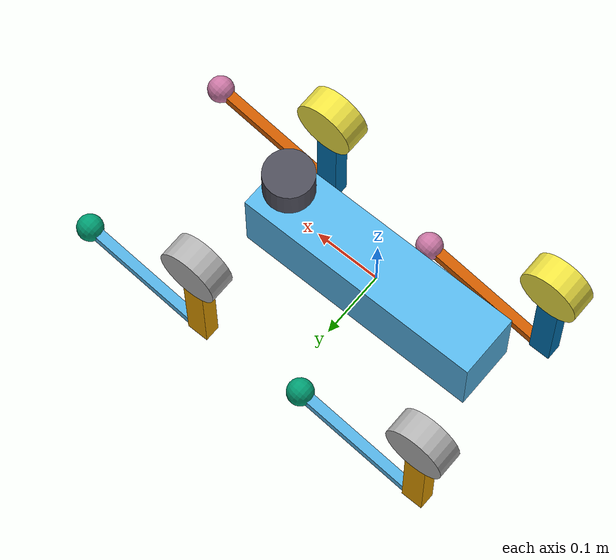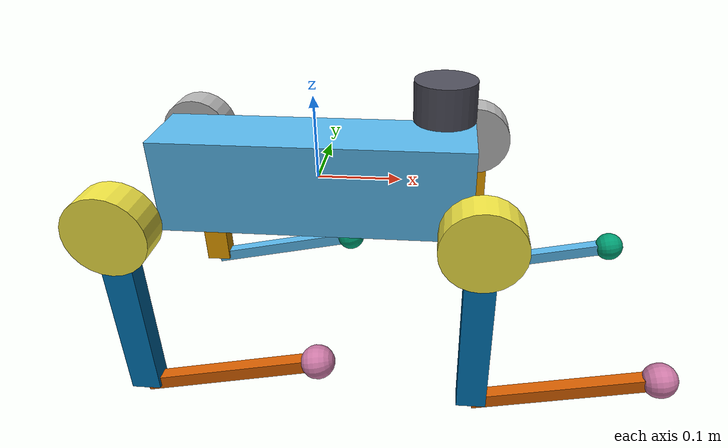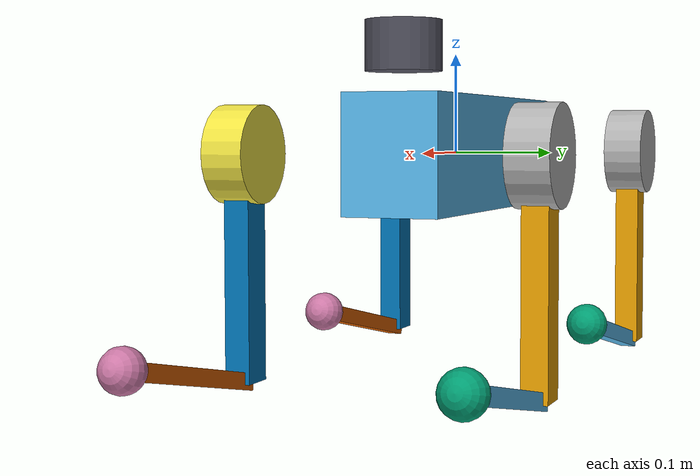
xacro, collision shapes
<?xml version="1.0"?>
<robot name="go2_with_mid360" xmlns:xacro="http://www.ros.org/wiki/xacro">

    <!-- Include go2 robot description -->
    <xacro:include filename="$(find go2_description)/xacro/const.xacro"/>
    <xacro:include filename="$(find go2_description)/xacro/materials.xacro"/>
    <xacro:include filename="$(find go2_description)/xacro/leg.xacro"/>
    <xacro:include filename="$(find go2_description)/xacro/gazebo.xacro"/>

    <!-- Base link -->
    <link name="base_link">
        <visual>
            <origin rpy="0 0 0" xyz="0 0 0"/>
            <geometry>
                <box size="0.001 0.001 0.001"/>
            </geometry>
        </visual>
    </link>

    <joint name="floating_base" type="fixed">
        <origin rpy="0 0 0" xyz="0 0 0"/>
        <parent link="base_link"/>
        <child link="trunk"/>
    </joint>

    <!-- Trunk link -->
    <link name="trunk">
        <visual>
            <origin rpy="0 0 0" xyz="0 0 0"/>
            <geometry>
                <mesh filename="file://$(find go2_description)/meshes/trunk.dae" scale="1 1 1"/>
            </geometry>
        </visual>
        <collision>
            <origin rpy="0 0 0" xyz="0 0 0"/>
            <geometry>
                <box size="${trunk_length} ${trunk_width} ${trunk_height}"/>
            </geometry>
        </collision>
        <inertial>
            <origin rpy="0 0 0" xyz="${trunk_com_x} ${trunk_com_y} ${trunk_com_z}"/>
            <mass value="${trunk_mass}"/>
            <inertia
                ixx="${trunk_ixx}" ixy="${trunk_ixy}" ixz="${trunk_ixz}"
                iyy="${trunk_iyy}" iyz="${trunk_iyz}"
                izz="${trunk_izz}"/>
        </inertial>
    </link>

    <!-- IMU link -->
    <joint name="imu_joint" type="fixed">
        <parent link="trunk"/>
        <child link="imu_link"/>
        <origin rpy="0 0 0" xyz="0 0 0"/>
    </joint>

    <link name="imu_link">
        <inertial>
            <mass value="0.001"/>
            <origin rpy="0 0 0" xyz="0 0 0"/>
            <inertia ixx="0.0001" ixy="0" ixz="0" iyy="0.0001" iyz="0" izz="0.0001"/>
        </inertial>
        <visual>
            <origin rpy="0 0 0" xyz="0 0 0"/>
            <geometry>
                <box size="0.001 0.001 0.001"/>
            </geometry>
        </visual>
        <collision>
            <origin rpy="0 0 0" xyz="0 0 0"/>
            <geometry>
                <box size=".001 .001 .001"/>
            </geometry>
        </collision>
    </link>

    <!-- Legs -->
    <xacro:leg name="rf" mirror="-1" mirror_dae="False" front_hind="1"  front_hind_dae="True"  />
    <xacro:leg name="lf" mirror="1"  mirror_dae="True"  front_hind="1"  front_hind_dae="True"  />
    <xacro:leg name="rh" mirror="-1" mirror_dae="False" front_hind="-1" front_hind_dae="False" />
    <xacro:leg name="lh" mirror="1"  mirror_dae="True"  front_hind="-1" front_hind_dae="False" />

    <!-- Livox Mid360 Lidar -->
    <joint name="livox_mid360_joint" type="fixed">
        <parent link="trunk"/>
        <child link="livox_mid360_link"/>
        <!-- Mount on top of the robot, centered -->
        <origin rpy="0 0 0" xyz="0.15 0.0 0.1"/>
    </joint>

    <link name="livox_mid360_link">
        <inertial>
            <mass value="0.265"/>
            <origin rpy="0 0 0" xyz="0 0 0"/>
            <inertia ixx="0.0001" ixy="0" ixz="0" iyy="0.0001" iyz="0" izz="0.0001"/>
        </inertial>
        <collision>
            <origin rpy="0 0 0" xyz="0 0 0"/>
            <geometry>
                <cylinder radius="0.036" length="0.047"/>
            </geometry>
        </collision>
        <visual>
            <origin rpy="0 0 0" xyz="0 0 0"/>
            <geometry>
                <cylinder radius="0.036" length="0.047"/>
            </geometry>
            <material name="livox_grey">
                <color rgba="0.3 0.3 0.35 1.0"/>
            </material>
        </visual>
        <!-- Top disc -->
        <visual>
            <origin rpy="0 0 0" xyz="0 0 0.022"/>
            <geometry>
                <cylinder radius="0.036" length="0.003"/>
            </geometry>
            <material name="livox_dark">
                <color rgba="0.15 0.15 0.15 1.0"/>
            </material>
        </visual>
    </link>

    <gazebo reference="livox_mid360_link">
        <sensor type="ray" name="laser_livox">
            <pose>0 0 0.02 0 0 0</pose>
            <visualize>true</visualize>
            <always_on>true</always_on>
            <update_rate>10</update_rate>
            <ray>
                <scan>
                    <horizontal>
                        <samples>100</samples>
                        <resolution>1</resolution>
                        <min_angle>-3.1415926535897931</min_angle>
                        <max_angle>3.1415926535897931</max_angle>
                    </horizontal>
                    <vertical>
                        <samples>50</samples>
                        <resolution>1</resolution>
                        <min_angle>-3.1415926535897931</min_angle>
                        <max_angle>3.1415926535897931</max_angle>
                    </vertical>
                </scan>
                <range>
                    <min>0.1</min>
                    <max>40</max>
                    <resolution>1</resolution>
                </range>
                <noise>
                    <type>gaussian</type>
                    <mean>0.0</mean>
                    <stddev>0.0</stddev>
                </noise>
            </ray>
            <plugin name="gazebo_ros_laser_controller" filename="liblivox_laser_simulation_plugin.so">
                <ray>
                    <scan>
                        <horizontal>
                            <samples>100</samples>
                            <resolution>1</resolution>
                            <min_angle>-3.1415926535897931</min_angle>
                            <max_angle>3.1415926535897931</max_angle>
                        </horizontal>
                        <vertical>
                            <samples>50</samples>
                            <resolution>1</resolution>
                            <min_angle>-3.1415926535897931</min_angle>
                            <max_angle>3.1415926535897931</max_angle>
                        </vertical>
                    </scan>
                    <range>
                        <min>0.1</min>
                        <max>40</max>
                        <resolution>1</resolution>
                    </range>
                    <noise>
                        <type>gaussian</type>
                        <mean>0.0</mean>
                        <stddev>0.0</stddev>
                    </noise>
                </ray>
                <visualize>true</visualize>
                <samples>24000</samples>
                <downsample>1</downsample>
                <csv_file_name>mid360-real-centr.csv</csv_file_name>
                <publish_pointcloud_type>2</publish_pointcloud_type>
                <ros_topic>/livox/lidar</ros_topic>
                <frameName>livox_mid360_link</frameName>
            </plugin>
        </sensor>
    </gazebo>

</robot>

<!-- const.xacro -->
<robot xmlns:xacro="http://www.ros.org/wiki/xacro">

    <!-- Constants for robot dimensions -->
    <xacro:property name="PI" value="3.1415926535897931"/>
    <xacro:property name="stick_mass" value="0.00001"/>

    <!-- simplified collision value -->
    <xacro:property name="trunk_width" value="0.0935"/>
    <xacro:property name="trunk_length" value="0.3762"/>
    <xacro:property name="trunk_height" value="0.114"/>
    <xacro:property name="hip_radius" value="0.046"/>
    <xacro:property name="hip_length" value="0.04"/>
    <xacro:property name="thigh_shoulder_radius" value="0.041"/>
    <xacro:property name="thigh_shoulder_length" value="0.032"/>
    <xacro:property name="thigh_width" value="0.0245"/>
    <xacro:property name="thigh_height" value="0.034"/>
    <xacro:property name="calf_width" value="0.016"/>
    <xacro:property name="calf_height" value="0.016"/>
    <xacro:property name="foot_radius" value="0.02"/>
    <xacro:property name="stick_radius" value="0.01"/>
    <xacro:property name="stick_length" value="0.2"/>

    <!-- kinematic value -->
    <xacro:property name="thigh_offset" value="0.0955"/>
    <xacro:property name="thigh_length" value="0.213"/>
    <xacro:property name="calf_length" value="0.213"/>

    <!-- leg offset from trunk center value -->
    <xacro:property name="leg_offset_x" value="0.1934"/>
    <xacro:property name="leg_offset_y" value="0.0465"/>
    <xacro:property name="hip_offset" value="0.0955"/>

    <!-- offset of link locations (left front) -->
    <xacro:property name="hip_offset_x" value="0.1934"/>
    <xacro:property name="hip_offset_y" value="0.0465"/>
    <xacro:property name="hip_offset_z" value="0.0"/>

    <xacro:property name="thigh_offset_x" value="0"/>
    <xacro:property name="thigh_offset_y" value="0.0955"/>
    <xacro:property name="thigh_offset_z" value="0.0"/>

    <xacro:property name="calf_offset_x" value="0.0"/>
    <xacro:property name="calf_offset_y" value="0.0"/>
    <xacro:property name="calf_offset_z" value="-0.213"/>

    <!-- joint limits -->
    <xacro:property name="damping" value="0.0"/>
    <xacro:property name="friction" value="0.0"/>
    <xacro:property name="hip_position_max" value="1.0472"/>
    <xacro:property name="hip_position_min" value="-1.0472"/>
    <xacro:property name="hip_velocity_max" value="30.1"/>
    <xacro:property name="hip_torque_max" value="23.7"/>
    <xacro:property name="thigh_position_max" value="3.4907"/>
    <xacro:property name="thigh_position_min" value="-1.5708"/>
    <xacro:property name="thigh_velocity_max" value="30.1"/>
    <xacro:property name="thigh_torque_max" value="23.7"/>
    <xacro:property name="calf_position_max" value="-0.83776"/>
    <xacro:property name="calf_position_min" value="-2.7227"/>
    <xacro:property name="calf_velocity_max" value="20.06"/>
    <xacro:property name="calf_torque_max" value="35.55"/>

    <!-- dynamics inertial value -->
    <!-- trunk -->
    <xacro:property name="trunk_mass" value="6.921"/>
    <xacro:property name="trunk_com_x" value="0.021112"/>
    <xacro:property name="trunk_com_y" value="0.00"/>
    <xacro:property name="trunk_com_z" value="-0.005366"/>
    <xacro:property name="trunk_ixx" value="0.02448"/>
    <xacro:property name="trunk_ixy" value="0.00012166"/>
    <xacro:property name="trunk_ixz" value="0.0014849"/>
    <xacro:property name="trunk_iyy" value="0.098077"/>
    <xacro:property name="trunk_iyz" value="-3.12E-05"/>
    <xacro:property name="trunk_izz" value="0.107"/>

    <!-- hip (left front) -->
    <xacro:property name="hip_mass" value="0.678"/>
    <xacro:property name="hip_com_x" value="-0.0054"/>
    <xacro:property name="hip_com_y" value="0.00194"/>
    <xacro:property name="hip_com_z" value="-0.000105"/>
    <xacro:property name="hip_ixx" value="0.00048"/>
    <xacro:property name="hip_ixy" value="-3.01E-06"/>
    <xacro:property name="hip_ixz" value="1.11E-06"/>
    <xacro:property name="hip_iyy" value="0.000884"/>
    <xacro:property name="hip_iyz" value="-1.42E-06"/>
    <xacro:property name="hip_izz" value="0.000596"/>

    <!-- thigh -->
    <xacro:property name="thigh_mass" value="1.152"/>
    <xacro:property name="thigh_com_x" value="-0.00374"/>
    <xacro:property name="thigh_com_y" value="-0.0223"/>
    <xacro:property name="thigh_com_z" value="-0.0327"/>
    <xacro:property name="thigh_ixx" value="0.00584"/>
    <xacro:property name="thigh_ixy" value="8.72E-05"/>
    <xacro:property name="thigh_ixz" value="-0.000289"/>
    <xacro:property name="thigh_iyy" value="0.0058"/>
    <xacro:property name="thigh_iyz" value="0.000808"/>
    <xacro:property name="thigh_izz" value="0.00103"/>

    <!-- calf -->
    <xacro:property name="calf_mass" value="0.154"/>
    <xacro:property name="calf_com_x" value="0.00548"/>
    <xacro:property name="calf_com_y" value="-0.000975"/>
    <xacro:property name="calf_com_z" value="-0.115"/>
    <xacro:property name="calf_ixx" value="0.00108"/>
    <xacro:property name="calf_ixy" value="3.4E-07"/>
    <xacro:property name="calf_ixz" value="1.72E-05"/>
    <xacro:property name="calf_iyy" value="0.0011"/>
    <xacro:property name="calf_iyz" value="8.28E-06"/>
    <xacro:property name="calf_izz" value="3.29E-05"/>

    <!-- foot -->
    <xacro:property name="foot_mass" value="0.06"/>

</robot>

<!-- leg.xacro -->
<robot xmlns:xacro="http://www.ros.org/wiki/xacro">

    <xacro:include filename="$(find go2_description)/xacro/transmission.xacro"/>

    <xacro:macro name="leg" params="name mirror mirror_dae front_hind front_hind_dae">

        <joint name="${name}_hip_joint" type="revolute">
            <xacro:if value="${(mirror_dae == False) and (front_hind_dae == True)}">
                <origin rpy="0 0 0" xyz="${leg_offset_x} ${-leg_offset_y} 0"/>
            </xacro:if>
            <xacro:if value="${(mirror_dae == True) and (front_hind_dae == True)}">
                <origin rpy="0 0 0" xyz="${leg_offset_x} ${leg_offset_y} 0"/>
            </xacro:if>
            <xacro:if value="${(mirror_dae == False) and (front_hind_dae == False)}">
                <origin rpy="0 0 0" xyz="${-leg_offset_x} ${-leg_offset_y} 0"/>
            </xacro:if>
            <xacro:if value="${(mirror_dae == True) and (front_hind_dae == False)}">
                <origin rpy="0 0 0" xyz="${-leg_offset_x} ${leg_offset_y} 0"/>
            </xacro:if>
            <parent link="trunk"/>
            <child link="${name}_hip"/>
            <axis xyz="1 0 0"/>
            <dynamics damping="${damping}" friction="${friction}"/>
            <xacro:if value="${(mirror_dae == True)}">
                <limit effort="${hip_torque_max}" velocity="${hip_velocity_max}" lower="${hip_position_min}" upper="${hip_position_max}"/>
            </xacro:if>
            <xacro:if value="${(mirror_dae == False)}">
                <limit effort="${hip_torque_max}" velocity="${hip_velocity_max}" lower="${-hip_position_max}" upper="${-hip_position_min}"/>
            </xacro:if>
        </joint>

        <link name="${name}_hip">
            <visual>
                <xacro:if value="${(mirror_dae == True) and (front_hind_dae == True)}">
                    <origin rpy="0 0 0" xyz="0 0 0"/>
                </xacro:if>
                <xacro:if value="${(mirror_dae == False) and (front_hind_dae == True)}">
                    <origin rpy="${PI} 0 0" xyz="0 0 0"/>
                </xacro:if>
                <xacro:if value="${(mirror_dae == True) and (front_hind_dae == False)}">
                    <origin rpy="0 ${PI} 0" xyz="0 0 0"/>
                </xacro:if>
                <xacro:if value="${(mirror_dae == False) and (front_hind_dae == False)}">
                    <origin rpy="${PI} ${PI} 0" xyz="0 0 0"/>
                </xacro:if>
                <geometry>
                    <mesh filename="package://go2_description/meshes/hip.dae" scale="1 1 1"/>
                </geometry>
            </visual>
            <collision>
                <origin rpy="${PI/2.0} 0 0" xyz="0 ${hip_offset*mirror} 0"/>
                <geometry>
                    <cylinder length="${hip_length}" radius="${hip_radius}"/>
                </geometry>
            </collision>
            <inertial>
                <origin rpy="0 0 0" xyz="${hip_com_x*front_hind} ${hip_com_y*mirror} ${hip_com_z}"/>
                <mass value="${hip_mass}"/>
                <inertia
                    ixx="${hip_ixx}" ixy="${hip_ixy*mirror*front_hind}" ixz="${hip_ixz*front_hind}"
                    iyy="${hip_iyy}" iyz="${hip_iyz*mirror}"
                    izz="${hip_izz}"/>
            </inertial>
        </link>

        <joint name="${name}_thigh_joint" type="revolute">
            <origin rpy="0 0 0" xyz="0 ${thigh_offset*mirror} 0"/>
            <parent link="${name}_hip"/>
            <child link="${name}_thigh"/>
            <axis xyz="0 1 0"/>
            <dynamics damping="${damping}" friction="${friction}"/>
            <limit effort="${thigh_torque_max}" velocity="${thigh_velocity_max}" lower="${thigh_position_min}" upper="${thigh_position_max}"/>
        </joint>

        <link name="${name}_thigh">
            <visual>
                <origin rpy="0 0 0" xyz="0 0 0"/>
                <geometry>
                    <xacro:if value="${mirror_dae == True}">
                        <mesh filename="package://go2_description/meshes/thigh.dae" scale="1 1 1"/>
                    </xacro:if>
                    <xacro:if value="${mirror_dae == False}">
                        <mesh filename="package://go2_description/meshes/thigh_mirror.dae" scale="1 1 1"/>
                    </xacro:if>
                </geometry>
            </visual>
            <collision>
                <origin rpy="0 ${PI/2.0} 0" xyz="0 0 ${-thigh_length/2.0}"/>
                <geometry>
                    <box size="${thigh_length} ${thigh_width} ${thigh_height}"/>
                </geometry>
            </collision>
            <inertial>
                <origin rpy="0 0 0" xyz="${thigh_com_x} ${thigh_com_y*mirror} ${thigh_com_z}"/>
                <mass value="${thigh_mass}"/>
                <inertia
                    ixx="${thigh_ixx}" ixy="${thigh_ixy*mirror}" ixz="${thigh_ixz}"
                    iyy="${thigh_iyy}" iyz="${thigh_iyz*mirror}"
                    izz="${thigh_izz}"/>
            </inertial>
        </link>

        <joint name="${name}_calf_joint" type="revolute">
            <origin rpy="0 0 0" xyz="0 0 ${-thigh_length}"/>
            <parent link="${name}_thigh"/>
            <child link="${name}_calf"/>
            <axis xyz="0 1 0"/>
            <dynamics damping="${damping}" friction="${friction}"/>
            <limit effort="${calf_torque_max}" velocity="${calf_velocity_max}" lower="${calf_position_min}" upper="${calf_position_max}"/>
        </joint>

        <link name="${name}_calf">
            <visual>
                <origin rpy="0 0 0" xyz="0 0 0"/>
                <geometry>
                    <mesh filename="package://go2_description/meshes/calf.dae" scale="1 1 1"/>
                </geometry>
            </visual>
            <collision>
                <origin rpy="0 ${PI/2.0} 0" xyz="0 0 ${-calf_length/2.0}"/>
                <geometry>
                    <box size="${calf_length} ${calf_width} ${calf_height}"/>
                </geometry>
            </collision>
            <inertial>
                <origin rpy="0 0 0" xyz="${calf_com_x} ${calf_com_y} ${calf_com_z}"/>
                <mass value="${calf_mass}"/>
                <inertia
                    ixx="${calf_ixx}" ixy="${calf_ixy}" ixz="${calf_ixz}"
                    iyy="${calf_iyy}" iyz="${calf_iyz}"
                    izz="${calf_izz}"/>
            </inertial>
        </link>

        <joint name="${name}_foot_fixed" type="fixed">0
            <origin rpy="0 0 0" xyz="0 0 ${-(calf_length)}"/>
            <parent link="${name}_calf"/>
            <child link="${name}_foot"/>
        </joint>

        <link name="${name}_foot">
            <visual>
                <origin rpy="0 0 0" xyz="0 0 0"/>
                <geometry>
                    <sphere radius="${foot_radius-0.01}"/>
                </geometry>
            </visual>
            <collision>
                <origin rpy="0 0 0" xyz="0 0 0"/>
                <geometry>
                    <sphere radius="${foot_radius}"/>
                </geometry>
            </collision>
            <inertial>
                <mass value="${foot_mass}"/>
                <inertia
                    ixx="${(2*foot_mass)/5.0*(foot_radius*foot_radius)}" ixy="0.0" ixz="0.0"
                    iyy="${(2*foot_mass)/5.0*(foot_radius*foot_radius)}" iyz="0.0"
                    izz="${(2*foot_mass)/5.0*(foot_radius*foot_radius)}"/>
            </inertial>
        </link>

        <xacro:leg_transmission name="${name}"/>
    </xacro:macro>
</robot>
